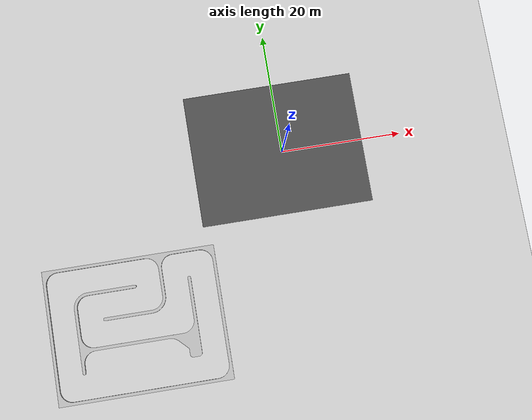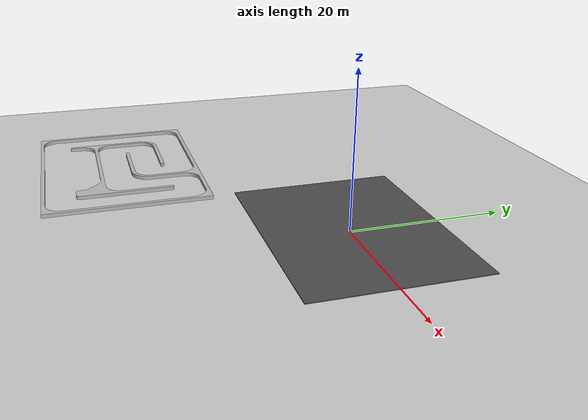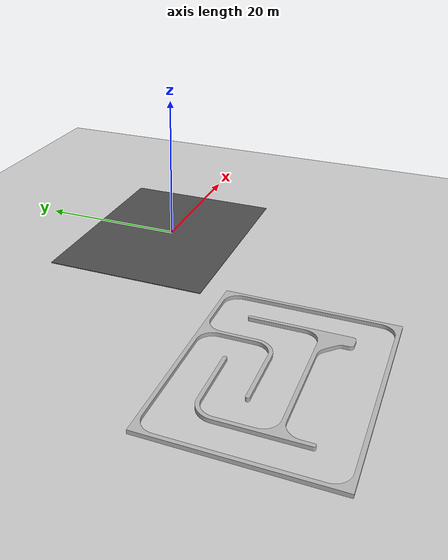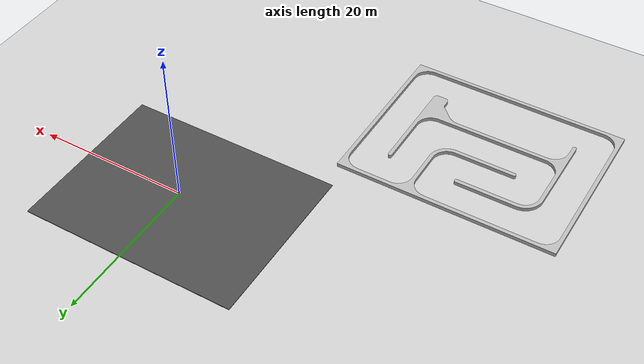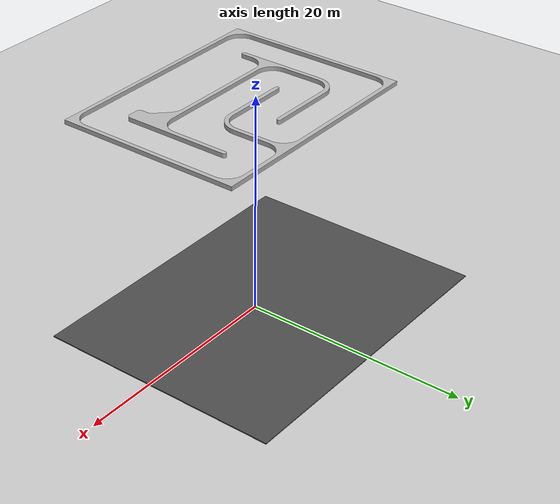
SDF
<sdf version="1.6">
 <world name="default">
  <plugin filename="gz-sim-physics-system" name="gz::sim::systems::Physics"/>
  <plugin filename="gz-sim-user-commands-system" name="gz::sim::systems::UserCommands"/>
  <plugin filename="gz-sim-scene-broadcaster-system" name="gz::sim::systems::SceneBroadcaster"/>
  <plugin filename="gz-sim-sensors-system" name="gz::sim::systems::Sensors">
   <render_engine>ogre2</render_engine>
  </plugin>
  <plugin filename="gz-sim-imu-system" name="gz::sim::systems::Imu"/>
  <light name="sun" type="directional">
   <pose>0 0 100 0 -0 0</pose>
   <diffuse>0.8 0.8 0.8 1</diffuse>
   <specular>0.1 0.1 0.1 1</specular>
   <attenuation>
    <range>1000</range>
    <constant>0.9</constant>
    <linear>0.01</linear>
    <quadratic>0.001</quadratic>
   </attenuation>
   <direction>-0.5 0.5 -1</direction>
  </light>
  <model name="ground_plane">
   <static>1</static>
   <link name="link">
    <collision name="collision">
     <geometry><plane><normal>0 0 1</normal><size>100 100</size></plane></geometry>
     <surface><friction><ode><mu>100</mu><mu2>50</mu2></ode></friction></surface>
    </collision>
    <visual name="visual">
     <cast_shadows>0</cast_shadows>
     <geometry><plane><normal>0 0 1</normal><size>100 100</size></plane></geometry>
     <material>
      <script><uri>file://media/materials/scripts/gazebo.material</uri><name>Gazebo/Grey</name></script>
     </material>
    </visual>
   </link>
  </model>
  <gravity>0 0 -9.8</gravity>
  <magnetic_field>6e-06 2.3e-05 -4.2e-05</magnetic_field>
  <atmosphere type="adiabatic"/>
  <physics name="default_physics" default="0" type="ode">
   <max_step_size>0.001</max_step_size>
   <real_time_factor>1</real_time_factor>
   <real_time_update_rate>1000</real_time_update_rate>
  </physics>
  <scene><ambient>0.4 0.4 0.4 1</ambient><background>0.7 0.7 0.7 1</background><shadows>1</shadows></scene>
  <spherical_coordinates>
   <surface_model>EARTH_WGS84</surface_model>
   <latitude_deg>0</latitude_deg>
   <longitude_deg>0</longitude_deg>
   <elevation>0</elevation>
   <heading_deg>0</heading_deg>
  </spherical_coordinates>
  <model name="asphalt_plane">
   <static>1</static>
   <link name="link">
    <collision name="collision"><geometry><box><size>28.54 22.04 0.1</size></box></geometry></collision>
    <visual name="visual">
     <cast_shadows>0</cast_shadows>
     <geometry><box><size>28.54 22.04 0.1</size></box></geometry>
     <material>
      <script>
       <uri>model://world/models/asphalt_plane/materials/scripts</uri>
       <uri>model://world/models/asphalt_plane/materials/textures</uri>
       <name>vrc/asphalt</name>
      </script>
     </material>
    </visual>
   </link>
   <pose>-0.719505 0.551979 0 0 0 0</pose>
  </model>
  <model name="race_track">
   <pose>-28.0315 -24.6199 0 0 -0 0</pose>
   <static>1</static>
   <link name="body">
    <collision name="collision">
     <geometry>
      <mesh><uri>model://world/models/race_track/race_track.stl</uri><scale>0.1 0.1 0.1</scale></mesh>
     </geometry>
    </collision>
    <visual name="visual">
     <geometry>
      <mesh><uri>model://world/models/race_track/race_track.stl</uri><scale>0.1 0.1 0.025</scale></mesh>
     </geometry>
    </visual>
   </link>
  </model>
  <audio><device>default</device></audio>
 </world>
</sdf>
